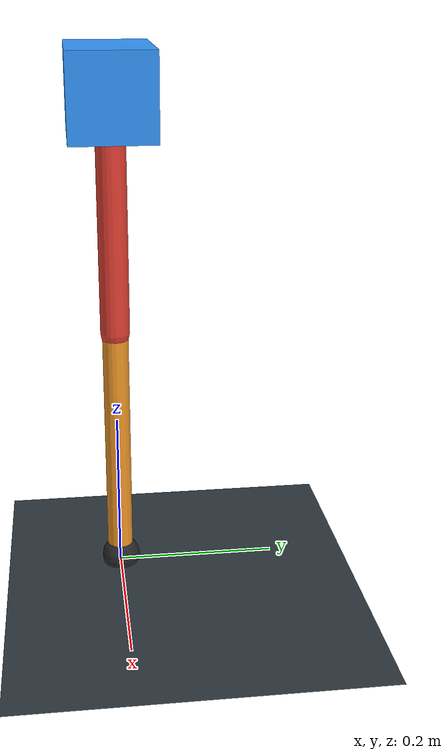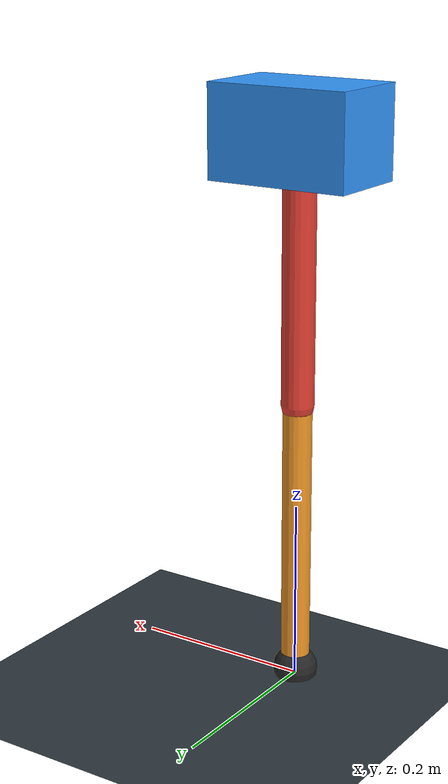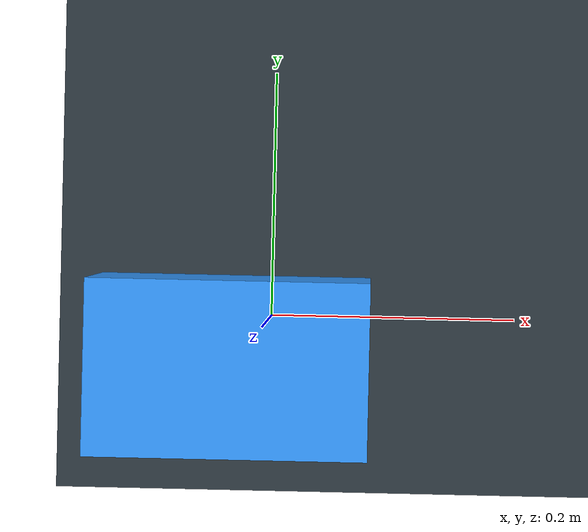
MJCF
<mujoco model="single_axis_two_bar">
  <compiler angle="radian" inertiafromgeom="true"/>
  <option timestep="0.001" integrator="implicitfast" gravity="0 0 -9.81"/>
  <default>
    <joint damping="0.08"/>
    <geom friction="1.2 0.01 0.0001" condim="3"/>
  </default>
  <worldbody>
    <geom name="floor" type="plane" size="5 5 0.1" rgba="0.18 0.22 0.25 1"/>
    <body name="carriage" pos="0 0 0.6081113208462879">
      <joint name="pole_slide" type="slide" axis="0 0 1"/>
      <geom name="payload" type="box" size="0.08 0.05 0.05" mass="3.3646615033723903" rgba="0.2 0.6 1 1"/>
      <body name="thigh" pos="0 0 0">
        <joint name="hip" type="hinge" axis="0 1 0"/>
        <geom name="thigh_link" type="capsule" fromto="0 0 0 0 0 -0.29111179977710755" size="0.018" mass="0.20742100404423489" rgba="0.9 0.25 0.2 1"/>
        <body name="shank" pos="0 0 -0.29111179977710755">
          <joint name="knee" type="hinge" axis="0 1 0"/>
          <geom name="shank_link" type="capsule" fromto="0 0 0 0 0 -0.3100338918170037" size="0.016" mass="0.22090324465604716" rgba="0.95 0.6 0.15 1"/>
          <geom name="foot" type="sphere" pos="0 0 -0.3100338918170037" size="0.025" mass="0.03" rgba="0.15 0.15 0.15 1"/>
          <site name="toe" pos="0 0 -0.3100338918170037" size="0.008"/>
        </body>
      </body>
    </body>
  </worldbody>
  <actuator>
    <motor name="hip_motor" joint="hip" ctrlrange="-24.759387643657078 24.759387643657078"/>
    <motor name="knee_motor" joint="knee" ctrlrange="-142.3805209739952 142.3805209739952"/>
  </actuator>
</mujoco>
